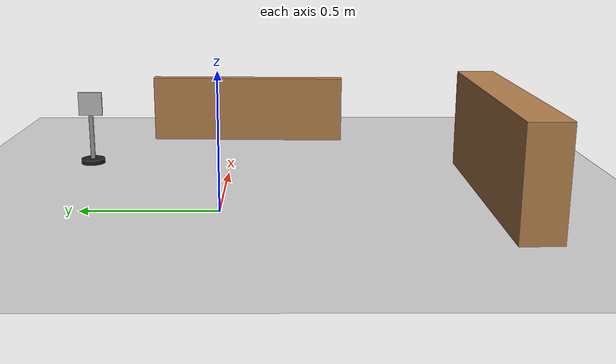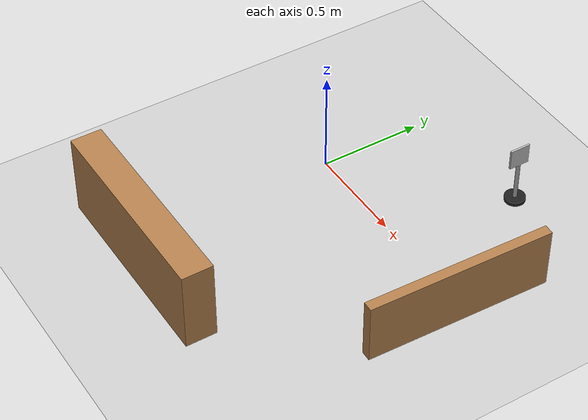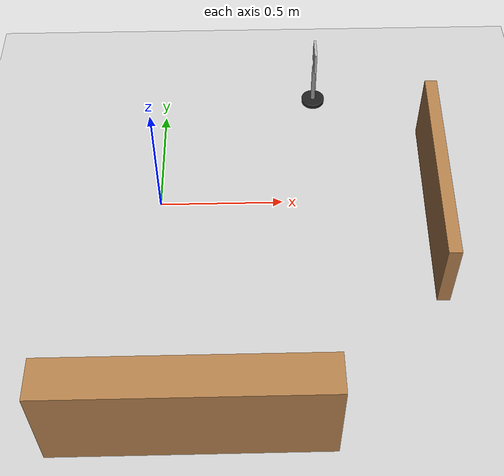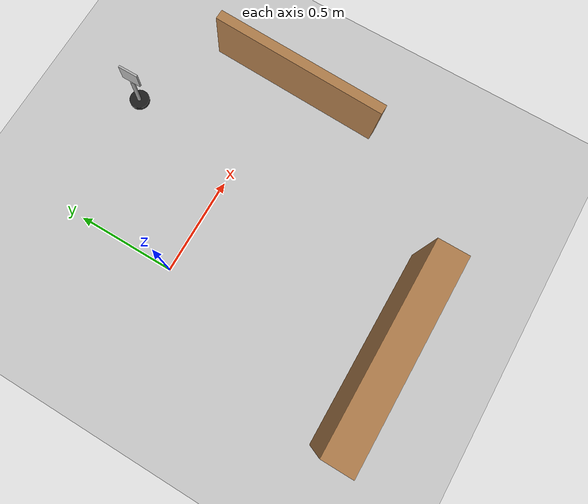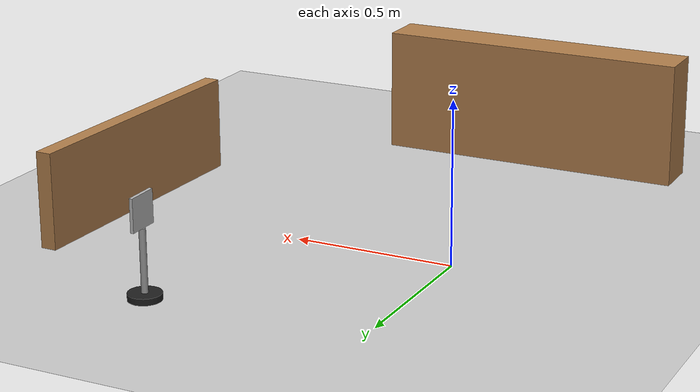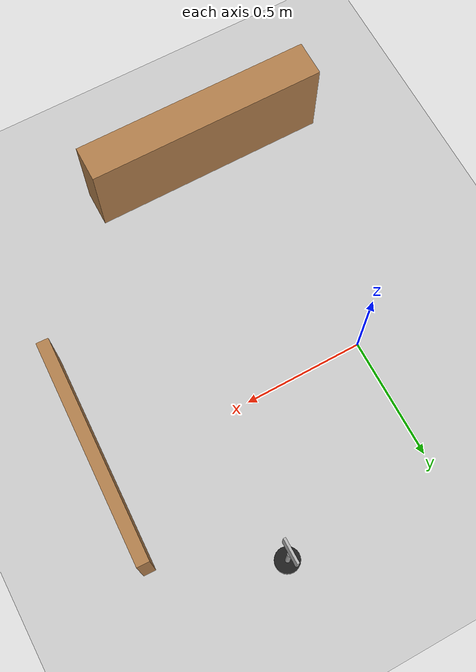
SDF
<sdf version="1.6">
 <world name="default">
  <light name="sun" type="directional">
   <pose>0 0 10 0 -0 0</pose>
   <diffuse>0.8 0.8 0.8 1</diffuse>
   <specular>0.2 0.2 0.2 1</specular>
   <attenuation>
    <range>1000</range>
    <constant>0.9</constant>
    <linear>0.01</linear>
    <quadratic>0.001</quadratic>
   </attenuation>
   <direction>-0.5 0.1 -0.9</direction>
  </light>
  <model name="ground_plane">
   <static>1</static>
   <link name="link">
    <collision name="collision">
     <geometry><plane><normal>0 0 1</normal><size>100 100</size></plane></geometry>
     <surface>
      <contact><collide_bitmask>65535</collide_bitmask></contact>
      <friction><ode><mu>100</mu><mu2>50</mu2></ode></friction>
     </surface>
    </collision>
    <visual name="visual">
     <cast_shadows>0</cast_shadows>
     <geometry><plane><normal>0 0 1</normal><size>100 100</size></plane></geometry>
     <material>
      <script><uri>file://media/materials/scripts/gazebo.material</uri><name>Gazebo/Grey</name></script>
     </material>
    </visual>
   </link>
  </model>
  <gravity>0 0 -9.8</gravity>
  <magnetic_field>6e-06 2.3e-05 -4.2e-05</magnetic_field>
  <atmosphere type="adiabatic"/>
  <physics name="default_physics" default="0" type="ode">
   <max_step_size>0.001</max_step_size>
   <real_time_factor>1</real_time_factor>
   <real_time_update_rate>1000</real_time_update_rate>
  </physics>
  <scene><ambient>0.4 0.4 0.4 1</ambient><background>0.7 0.7 0.7 1</background><shadows>1</shadows></scene>
  <spherical_coordinates>
   <surface_model>EARTH_WGS84</surface_model>
   <latitude_deg>0</latitude_deg>
   <longitude_deg>0</longitude_deg>
   <elevation>0</elevation>
   <heading_deg>0</heading_deg>
  </spherical_coordinates>
  <model name="wall09">
   <pose>0.19035 -0.020239 9.9e-05 0.000923 2.1e-05 1.53501</pose>
   <link name="Wall_0">
    <collision name="Wall_0_Collision">
     <geometry><box><size>0.9 0.05 0.3</size></box></geometry>
     <pose>0 0 0.15 0 -0 0</pose>
    </collision>
    <visual name="Wall_0_Visual">
     <pose>0 0 0.15 0 -0 0</pose>
     <geometry><box><size>0.9 0.05 0.3</size></box></geometry>
     <material>
      <script><uri>file://media/materials/scripts/gazebo.material</uri><name>Gazebo/Wood</name></script>
      <ambient>1 1 1 1</ambient>
     </material>
     <meta><layer>0</layer></meta>
    </visual>
    <pose>0 -0.9225 0 0 -0 0</pose>
   </link>
   <static>1</static>
  </model>
  <model name="sign_left_turn">
   <link name="link_0">
    <inertial>
     <mass>0.00689886</mass>
     <inertia>
      <ixx>4.77026e-05</ixx>
      <ixy>0</ixy>
      <ixz>0</ixz>
      <iyy>4.77026e-05</iyy>
      <iyz>0</iyz>
      <izz>9.04191e-05</izz>
     </inertia>
    </inertial>
    <pose>0 0 -0.1 0 -0 0</pose>
    <visual name="visual">
     <geometry><cylinder><radius>0.05</radius><length>0.02</length></cylinder></geometry>
     <material>
      <lighting>1</lighting>
      <script><uri>file://media/materials/scripts/gazebo.material</uri><name>Gazebo/Black</name></script>
      <shader type="pixel"/>
      <emissive>0 0 0 1</emissive>
     </material>
    </visual>
    <collision name="collision">
     <geometry><cylinder><radius>0.05</radius><length>0.02</length></cylinder></geometry>
     <surface>
      <friction>
       <ode><mu>1</mu><mu2>1</mu2><fdir1>0 0 0</fdir1><slip1>0</slip1><slip2>0</slip2></ode>
       <torsional>
        <coefficient>1</coefficient>
        <patch_radius>0</patch_radius>
        <surface_radius>0</surface_radius>
        <use_patch_radius>1</use_patch_radius>
        <ode><slip>0</slip></ode>
       </torsional>
      </friction>
      <bounce><restitution_coefficient>0</restitution_coefficient><threshold>1e+06</threshold></bounce>
      <contact>
       <collide_without_contact>0</collide_without_contact>
       <collide_without_contact_bitmask>1</collide_without_contact_bitmask>
       <collide_bitmask>1</collide_bitmask>
       <ode>
        <soft_cfm>0</soft_cfm>
        <soft_erp>0.2</soft_erp>
        <kp>1e+13</kp>
        <kd>1</kd>
        <max_vel>0.01</max_vel>
        <min_depth>0</min_depth>
       </ode>
       <bullet>
        <split_impulse>1</split_impulse>
        <split_impulse_penetration_threshold>-0.01</split_impulse_penetration_threshold>
        <soft_cfm>0</soft_cfm>
        <soft_erp>0.2</soft_erp>
        <kp>1e+13</kp>
        <kd>1</kd>
       </bullet>
      </contact>
     </surface>
    </collision>
   </link>
   <link name="link_1">
    <inertial>
     <mass>0.000371732</mass>
     <inertia>
      <ixx>8.63892e-05</ixx>
      <ixy>0</ixy>
      <ixz>0</ixz>
      <iyy>8.63892e-05</iyy>
      <iyz>0</iyz>
      <izz>3.30867e-06</izz>
     </inertia>
    </inertial>
    <visual name="visual">
     <geometry><cylinder><radius>0.01</radius><length>0.2</length></cylinder></geometry>
     <material>
      <lighting>1</lighting>
      <script><uri>file://media/materials/scripts/gazebo.material</uri><name>Gazebo/Grey</name></script>
      <shader type="pixel"/>
      <emissive>0 0 0 1</emissive>
     </material>
    </visual>
    <collision name="collision">
     <geometry><cylinder><radius>0.01</radius><length>0.2</length></cylinder></geometry>
     <surface>
      <friction>
       <ode><mu>1</mu><mu2>1</mu2><fdir1>0 0 0</fdir1><slip1>0</slip1><slip2>0</slip2></ode>
       <torsional>
        <coefficient>1</coefficient>
        <patch_radius>0</patch_radius>
        <surface_radius>0</surface_radius>
        <use_patch_radius>1</use_patch_radius>
        <ode><slip>0</slip></ode>
       </torsional>
      </friction>
      <bounce><restitution_coefficient>0</restitution_coefficient><threshold>1e+06</threshold></bounce>
      <contact>
       <collide_without_contact>0</collide_without_contact>
       <collide_without_contact_bitmask>1</collide_without_contact_bitmask>
       <collide_bitmask>1</collide_bitmask>
       <ode>
        <soft_cfm>0</soft_cfm>
        <soft_erp>0.2</soft_erp>
        <kp>1e+13</kp>
        <kd>1</kd>
        <max_vel>0.01</max_vel>
        <min_depth>0</min_depth>
       </ode>
       <bullet>
        <split_impulse>1</split_impulse>
        <split_impulse_penetration_threshold>-0.01</split_impulse_penetration_threshold>
        <soft_cfm>0</soft_cfm>
        <soft_erp>0.2</soft_erp>
        <kp>1e+13</kp>
        <kd>1</kd>
       </bullet>
      </contact>
     </surface>
    </collision>
   </link>
   <link name="link_2">
    <inertial>
     <mass>0.000803864</mass>
     <inertia>
      <ixx>0.000152874</ixx>
      <ixy>0</ixy>
      <ixz>0</ixz>
      <iyy>7.89053e-05</iyy>
      <iyz>0</iyz>
      <izz>8.06245e-05</izz>
     </inertia>
    </inertial>
    <pose>0 0 0.15 0 -0 0</pose>
    <visual name="visual">
     <geometry><box><size>0.01 0.1 0.1</size></box></geometry>
     <material>
      <script><uri>file://media/materials/scripts/gazebo.material</uri><name>Gazebo/Left</name></script>
     </material>
    </visual>
    <collision name="collision">
     <geometry><box><size>0.01 0.1 0.1</size></box></geometry>
     <surface>
      <friction>
       <ode><mu>1</mu><mu2>1</mu2><fdir1>0 0 0</fdir1><slip1>0</slip1><slip2>0</slip2></ode>
       <torsional>
        <coefficient>1</coefficient>
        <patch_radius>0</patch_radius>
        <surface_radius>0</surface_radius>
        <use_patch_radius>1</use_patch_radius>
        <ode><slip>0</slip></ode>
       </torsional>
      </friction>
      <bounce><restitution_coefficient>0</restitution_coefficient><threshold>1e+06</threshold></bounce>
      <contact>
       <collide_without_contact>0</collide_without_contact>
       <collide_without_contact_bitmask>1</collide_without_contact_bitmask>
       <collide_bitmask>1</collide_bitmask>
       <ode>
        <soft_cfm>0</soft_cfm>
        <soft_erp>0.2</soft_erp>
        <kp>1e+13</kp>
        <kd>1</kd>
        <max_vel>0.01</max_vel>
        <min_depth>0</min_depth>
       </ode>
       <bullet>
        <split_impulse>1</split_impulse>
        <split_impulse_penetration_threshold>-0.01</split_impulse_penetration_threshold>
        <soft_cfm>0</soft_cfm>
        <soft_erp>0.2</soft_erp>
        <kp>1e+13</kp>
        <kd>1</kd>
       </bullet>
      </contact>
     </surface>
    </collision>
   </link>
   <joint name="link_0_JOINT_0" type="fixed">
    <parent>link_0</parent>
    <child>link_1</child>
    <physics>
     <ode><limit><cfm>0</cfm><erp>0.2</erp></limit><suspension><cfm>0</cfm><erp>0.2</erp></suspension></ode>
    </physics>
   </joint>
   <joint name="link_0_JOINT_1" type="fixed">
    <parent>link_0</parent>
    <child>link_2</child>
    <physics>
     <ode><limit><cfm>0</cfm><erp>0.2</erp></limit><suspension><cfm>0</cfm><erp>0.2</erp></suspension></ode>
    </physics>
   </joint>
   <static>0</static>
   <pose>0.658994 0.598846 0.11 0 -0 -4e-06</pose>
  </model>
  <model name="wall1m">
   <pose>0.153975 0.277207 0 0 -0 0</pose>
   <link name="Wall_0">
    <collision name="Wall_0_Collision">
     <geometry><box><size>1 0.15 0.4</size></box></geometry>
     <pose>0 0 0.2 0 -0 0</pose>
    </collision>
    <visual name="Wall_0_Visual">
     <pose>0 0 0.2 0 -0 0</pose>
     <geometry><box><size>1 0.15 0.4</size></box></geometry>
     <material>
      <script><uri>file://media/materials/scripts/gazebo.material</uri><name>Gazebo/Wood</name></script>
      <ambient>1 1 1 1</ambient>
     </material>
     <meta><layer>0</layer></meta>
    </visual>
    <pose>-0 -1.3125 0 0 -0 3.14159</pose>
   </link>
   <static>1</static>
  </model>
 </world>
</sdf>
